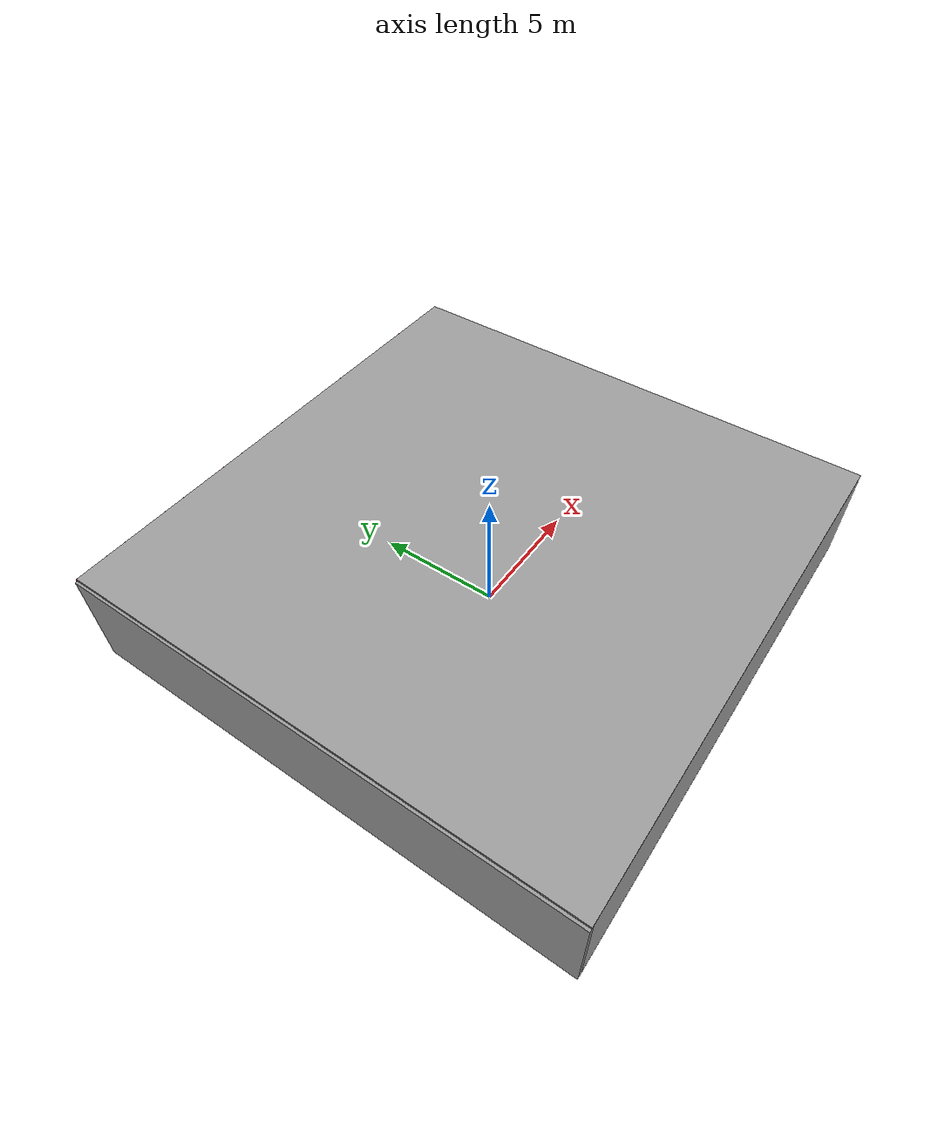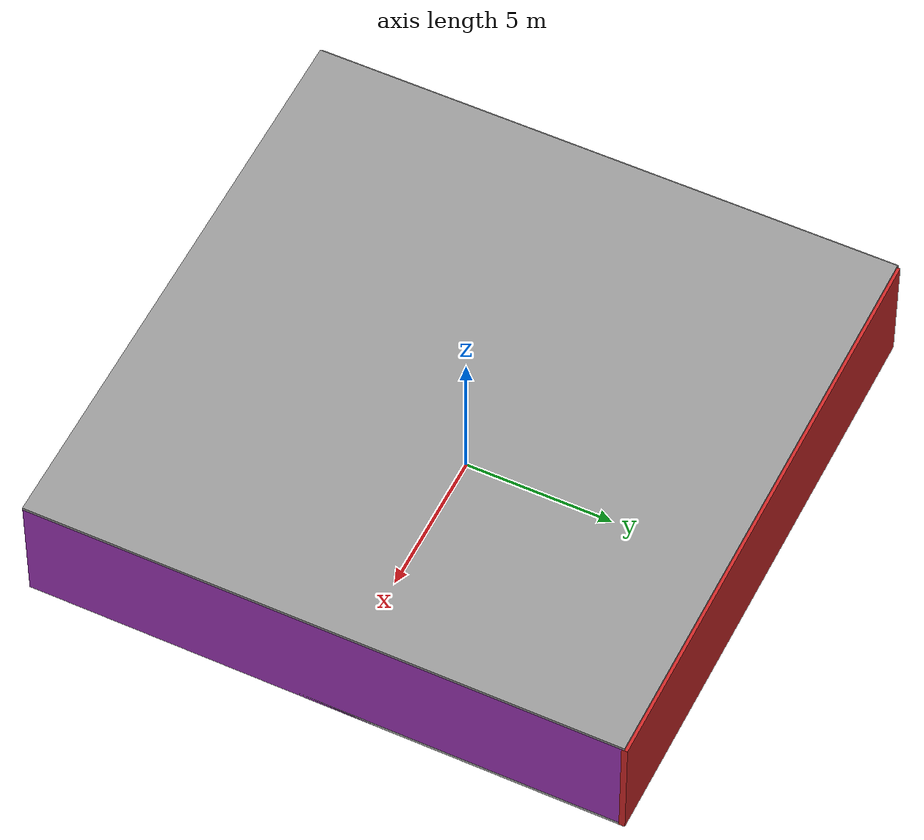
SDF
<sdf version="1.4">
 <world name="default">
  <physics type="ode">
   <max_step_size>0.001</max_step_size>
   <real_time_factor>1</real_time_factor>
   <real_time_update_rate>1000</real_time_update_rate>
   <gravity>0 0 -9.8</gravity>
  </physics>
  <scene><ambient>0.4 0.4 0.4 1</ambient><background>0.7 0.7 0.7 1</background><shadows>1</shadows></scene>
  <model name="Surrounding">
   <static>1</static>
   <link name="Ceiling">
    <collision name="Ceiling_Collision"><geometry><box><size>20 20 0.1</size></box></geometry></collision>
    <visual name="Ceiling_Visual">
     <geometry><box><size>20 20 0.1</size></box></geometry>
     <material>
      <script><uri>file://media/materials/scripts/gazebo.material</uri><name>Gazebo/Grey</name></script>
     </material>
    </visual>
    <pose>0 0 4.05 0 0 0</pose>
   </link>
   <link name="Wall_South">
    <collision name="Wall_South_Collision">
     <geometry><box><size>20 0 4</size></box></geometry>
     <pose>0 0 2 0 -0 0</pose>
    </collision>
    <visual name="Wall_South_Visual">
     <pose>0 0 2 0 -0 0</pose>
     <geometry><box><size>20 0 4</size></box></geometry>
     <material>
      <script><uri>file://media/materials/scripts/gazebo.material</uri><name>Gazebo/PioneerBody</name></script>
     </material>
    </visual>
    <velocity_decay><linear>0</linear><angular>0</angular></velocity_decay>
    <pose>0 -10 0 0 -0 0</pose>
   </link>
   <link name="Wall_East">
    <collision name="Wall_21_Collision">
     <geometry><box><size>20 0 4</size></box></geometry>
     <pose>0 0 2 0 -0 0</pose>
    </collision>
    <visual name="Wall_21_Visual">
     <pose>0 0 2 0 -0 0</pose>
     <geometry><box><size>20 0 4</size></box></geometry>
     <material>
      <script><uri>file://media/materials/scripts/gazebo.material</uri><name>Gazebo/PurpleGlow</name></script>
     </material>
    </visual>
    <velocity_decay><linear>0</linear><angular>0</angular></velocity_decay>
    <pose>10 0 0 0 -0 1.5708</pose>
   </link>
   <link name="Wall_North">
    <collision name="Wall_22_Collision">
     <geometry><box><size>20 0.2 4</size></box></geometry>
     <pose>0 0 2 0 -0 0</pose>
    </collision>
    <visual name="Wall_22_Visual">
     <pose>0 0 2 0 -0 0</pose>
     <geometry><box><size>20 0.2 4</size></box></geometry>
     <material>
      <script><uri>file://media/materials/scripts/gazebo.material</uri><name>Gazebo/Red</name></script>
     </material>
    </visual>
    <velocity_decay><linear>0</linear><angular>0</angular></velocity_decay>
    <pose>0 10 0 0 -0 0</pose>
   </link>
   <link name="Wall_West">
    <collision name="Wall_23_Collision">
     <geometry><box><size>20 0.2 4</size></box></geometry>
     <pose>0 0 2 0 -0 0</pose>
    </collision>
    <visual name="Wall_23_Visual">
     <pose>0 0 2 0 -0 0</pose>
     <geometry><box><size>20 0.2 4</size></box></geometry>
     <material>
      <script><uri>file://media/materials/scripts/gazebo.material</uri><name>Gazebo/Grey</name></script>
     </material>
    </visual>
    <velocity_decay><linear>0</linear><angular>0</angular></velocity_decay>
    <pose>-10 0 0 0 0 -1.5708</pose>
   </link>
   <link name="Ground_link">
    <collision name="collision">
     <pose>0 0 .05 0 -0 0</pose>
     <geometry><box><size>20 20 0.1</size></box></geometry>
    </collision>
    <visual name="visual">
     <pose>0 0 .05 0 -0 0</pose>
     <geometry><box><size>20 20 0.1</size></box></geometry>
     <material>
      <script><uri>file://media/materials/scripts/gazebo.material</uri><name>Gazebo/LightOn</name></script>
     </material>
    </visual>
   </link>
   <static>1</static>
  </model>
  <spherical_coordinates>
   <surface_model>EARTH_WGS84</surface_model>
   <latitude_deg>0</latitude_deg>
   <longitude_deg>0</longitude_deg>
   <elevation>0</elevation>
   <heading_deg>0</heading_deg>
  </spherical_coordinates>
  <light name="lightball_0" type="diffuse">
   <diffuse>0.8 0.8 0.8 1</diffuse>
   <specular>0.2 0.2 0.2 1</specular>
   <attenuation>
    <range>100</range>
    <constant>0.7</constant>
    <linear>0.01</linear>
    <quadratic>0.001</quadratic>
   </attenuation>
   <direction>-0.5 0.1 -0.9</direction>
   <pose>-1.09850128261 4.23059039691 1.70823492837 0 0 0</pose>
  </light>
  <light name="lightball_1" type="diffuse">
   <diffuse>0.8 0.8 0.8 1</diffuse>
   <specular>0.2 0.2 0.2 1</specular>
   <attenuation>
    <range>100</range>
    <constant>0.7</constant>
    <linear>0.01</linear>
    <quadratic>0.001</quadratic>
   </attenuation>
   <direction>-0.5 0.1 -0.9</direction>
   <pose>3.67840775792 3.63476996705 1.86008128026 0 0 0</pose>
  </light>
  <include>
   <uri>model://robocup_3Dsim_goal</uri>
   <pose>-7.34842048532 6.72848368077 0 0 0 0.178434358273</pose>
  </include>
  <include><uri>model://cabinet</uri><pose>-4.83233532024 -1.47540835998 0 0 0 1.59435239771</pose></include>
  <include>
   <uri>model://robocup_3Dsim_goal</uri>
   <pose>-5.68056238024 3.92187131179 0 0 0 0.0568249304401</pose>
  </include>
  <include>
   <uri>model://robocup_3Dsim_goal</uri>
   <pose>0.62270235823 -7.19054657349 0 0 0 1.4161109841</pose>
  </include>
  <include>
   <uri>model://robocup_3Dsim_goal</uri>
   <pose>1.91821050491 -5.65263570268 0 0 0 2.5629549778</pose>
  </include>
  <include><uri>model://cabinet</uri><pose>7.96404594759 -0.728511559887 0 0 0 0.0457571361077</pose></include>
  <include>
   <uri>model://robocup_3Dsim_goal</uri>
   <pose>8.57843241804 2.59389360098 0 0 0 0.458530488875</pose>
  </include>
 </world>
</sdf>

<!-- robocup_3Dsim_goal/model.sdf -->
<sdf version="1.5">
  <model name="robocup_3d_goal">
    <static>true</static>
    <link name="left_post">
      <pose>0 1.05 0.45 0 0 0</pose>
      <collision name="collision">
        <geometry>
          <cylinder>
            <radius>0.05</radius>
            <length>0.9</length>
          </cylinder>
        </geometry>
      </collision>
      <visual name="visual">
        <geometry>
          <cylinder>
            <radius>0.05</radius>
            <length>0.9</length>
          </cylinder>
        </geometry>
        <material>
          <script>
            <uri>file://media/materials/scripts/gazebo.material</uri>
            <name>Gazebo/ZincYellow</name>
          </script>
        </material>
      </visual>
    </link>
    <link name="left_support_horiz_lower">
      <pose>0.30 1.05 0.01 0 0 0</pose>
      <collision name="collision">
        <geometry>
          <box>
            <size>0.50 0.02 0.02</size>
          </box>
        </geometry>
      </collision>
      <visual name="visual">
        <geometry>
          <box>
            <size>0.50 0.02 0.02</size>
          </box>
        </geometry>
        <material>
          <script>
            <uri>file://media/materials/scripts/gazebo.material</uri>
            <name>Gazebo/White</name>
          </script>
        </material>
      </visual>
    </link>
    <link name="left_support_horiz_upper">
      <pose>0.30 1.05 0.79 0 0 0</pose>
      <collision name="collision">
        <geometry>
          <box>
            <size>0.50 0.02 0.02</size>
          </box>
        </geometry>
      </collision>
      <visual name="visual">
        <geometry>
          <box>
            <size>0.50 0.02 0.02</size>
          </box>
        </geometry>
        <material>
          <script>
            <uri>file://media/materials/scripts/gazebo.material</uri>
            <name>Gazebo/White</name>
          </script>
        </material>
      </visual>
    </link>
    <link name="left_support_vertical">
      <pose>0.56 1.05 0.4 0 1.5708 0</pose>
      <collision name="collision">
        <geometry>
          <box>
            <size>0.80 0.02 0.02</size>
          </box>
        </geometry>
      </collision>
      <visual name="visual">
        <geometry>
          <box>
            <size>0.80 0.02 0.02</size>
          </box>
        </geometry>
        <material>
          <script>
            <uri>file://media/materials/scripts/gazebo.material</uri>
            <name>Gazebo/White</name>
          </script>
        </material>
      </visual>
    </link>
    <link name="right_support_horiz_lower">
      <pose>0.30 -1.05 0.01 0 0 0</pose>
      <collision name="collision">
        <geometry>
          <box>
            <size>0.50 0.02 0.02</size>
          </box>
        </geometry>
      </collision>
      <visual name="visual">
        <geometry>
          <box>
            <size>0.50 0.02 0.02</size>
          </box>
        </geometry>
        <material>
          <script>
            <uri>file://media/materials/scripts/gazebo.material</uri>
            <name>Gazebo/White</name>
          </script>
        </material>
      </visual>
    </link>
    <link name="right_support_horiz_upper">
      <pose>0.30 -1.05 0.79 0 0 0</pose>
      <collision name="collision">
        <geometry>
          <box>
            <size>0.50 0.02 0.02</size>
          </box>
        </geometry>
      </collision>
      <visual name="visual">
        <geometry>
          <box>
            <size>0.50 0.02 0.02</size>
          </box>
        </geometry>
        <material>
          <script>
            <uri>file://media/materials/scripts/gazebo.material</uri>
            <name>Gazebo/White</name>
          </script>
        </material>
      </visual>
    </link>
    <link name="right_support_vertical">
      <pose>0.56 -1.05 0.4 0 1.5708 0</pose>
      <collision name="collision">
        <geometry>
          <box>
            <size>0.80 0.02 0.02</size>
          </box>
        </geometry>
      </collision>
      <visual name="visual">
        <geometry>
          <box>
            <size>0.80 0.02 0.02</size>
          </box>
        </geometry>
        <material>
          <script>
            <uri>file://media/materials/scripts/gazebo.material</uri>
            <name>Gazebo/White</name>
          </script>
        </material>
      </visual>
    </link>
    <link name="center_support_horiz_lower">
      <pose>0.56 0 0.01 0 1.5708 0</pose>
      <collision name="collision">
        <geometry>
          <box>
            <size>0.02 2.08 0.02</size>
          </box>
        </geometry>
      </collision>
      <visual name="visual">
        <geometry>
          <box>
            <size>0.02 2.08 0.02</size>
          </box>
        </geometry>
        <material>
          <script>
            <uri>file://media/materials/scripts/gazebo.material</uri>
            <name>Gazebo/White</name>
          </script>
        </material>
      </visual>
    </link>
    <link name="center_support_horiz_upper">
      <pose>0.56 0 0.79 0 1.5708 0</pose>
      <collision name="collision">
        <geometry>
          <box>
            <size>0.02 2.08 0.02</size>
          </box>
        </geometry>
      </collision>
      <visual name="visual">
        <geometry>
          <box>
            <size>0.02 2.08 0.02</size>
          </box>
        </geometry>
        <material>
          <script>
            <uri>file://media/materials/scripts/gazebo.material</uri>
            <name>Gazebo/White</name>
          </script>
        </material>
      </visual>
    </link>
    <link name="right_post">
      <pose>0 -1.05 0.45 0 0 0</pose>
      <collision name="collision">
        <geometry>
          <cylinder>
            <radius>0.05</radius>
            <length>0.9</length>
          </cylinder>
        </geometry>
      </collision>
      <visual name="visual">
        <geometry>
          <cylinder>
            <radius>0.05</radius>
            <length>0.9</length>
          </cylinder>
        </geometry>
        <material>
          <script>
            <uri>file://media/materials/scripts/gazebo.material</uri>
            <name>Gazebo/ZincYellow</name>
          </script>
        </material>
      </visual>
    </link>
    <link name="crossbar">
      <pose>0 0 0.85 1.57 1.57 0</pose>
      <collision name="collision">
        <geometry>
          <cylinder>
            <radius>0.05</radius>
            <length>2.0</length>
          </cylinder>
        </geometry>
      </collision>
      <visual name="visual">
        <geometry>
          <cylinder>
            <radius>0.05</radius>
            <length>2.0</length>
          </cylinder>
        </geometry>
        <material>
          <script>
            <uri>file://media/materials/scripts/gazebo.material</uri>
            <name>Gazebo/ZincYellow</name>
          </script>
        </material>
      </visual>
    </link>
    <link name="center_net">
      <pose>0.56 0 0.40 0 0 0</pose>
      <collision name="collision">
        <geometry>
          <box>
            <size>0.01 2.1 0.80</size>
          </box>
        </geometry>
      </collision>
      <visual name="visual">
        <geometry>
          <box>
            <size>0.01 2.1 0.80</size>
          </box>
        </geometry>
        <material>
          <script>
            <uri>model://../model_source/models/robocup09_spl_field/materials/scripts/</uri>
            <uri>model://../model_source/models/robocup09_spl_field/materials/textures/</uri>
            <name>RoboCup/Net</name>
          </script>
        </material>
      </visual>
    </link>
    <link name="left_net">
      <pose>0.30 1.05 0.40 0 0 0</pose>
      <collision name="collision">
        <geometry>
          <box>
            <size>0.50 0.01 0.76</size>
          </box>
        </geometry>
      </collision>
      <visual name="visual">
        <geometry>
          <box>
            <size>0.50 0.01 0.76</size>
          </box>
        </geometry>
        <material>
          <script>
            <uri>model://../model_source/models/robocup09_spl_field/materials/scripts/</uri>
            <uri>model://../model_source/models/robocup09_spl_field/materials/textures/</uri>
            <name>RoboCup/Net</name>
          </script>
        </material>
      </visual>
    </link>
    <link name="right_net">
      <pose>0.30 -1.05 0.40 0 0 0</pose>
      <collision name="collision">
        <geometry>
          <box>
            <size>0.50 0.01 0.76</size>
          </box>
        </geometry>
      </collision>
      <visual name="visual">
        <geometry>
          <box>
            <size>0.50 0.01 0.76</size>
          </box>
        </geometry>
        <material>
          <script>
            <uri>model://../model_source/models/robocup09_spl_field/materials/scripts/</uri>
            <uri>model://../model_source/models/robocup09_spl_field/materials/textures/</uri>
            <name>RoboCup/Net</name>
          </script>
        </material>
      </visual>
    </link>
  </model>
</sdf>

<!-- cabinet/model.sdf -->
<sdf version="1.5">
  <model name="cabinet">
    <static>true</static>
    <link name="cabinet_bottom_plate">
      <inertial>
        <pose>0 0 -1 0 0 0</pose>
        <inertia>
          <ixx>2.050000</ixx>
          <ixy>0</ixy>
          <ixz>0</ixz>
          <iyy>2.050000</iyy>
          <iyz>0</iyz>
          <izz>2.050000</izz>
        </inertia>
        <mass>25.000000</mass>
      </inertial>
      <collision name="cabinet_bottom_plate_geom">
        <pose>0 0 0.010000 0 0 0</pose>
        <geometry>
          <box>
            <size>0.450000 0.450000 0.020000</size>
          </box>
        </geometry>
      </collision>
      <visual name="cabinet_bottom_plate_geom_visual">
        <pose>0 0 0.010000 0 0 0</pose>
        <geometry>
          <box>
            <size>0.450000 0.450000 0.020000</size>
          </box>
        </geometry>
        <material>
          <script>
            <uri>model://media/materials/scripts/gazebo.material</uri>
            <name>Gazebo/Wood</name>
          </script>
        </material>
      </visual>
      <collision name="cabinet_bottom_plate_geom_cabinet_back_plate">
        <pose>0.235000 0 0.510000 0 0 0</pose>
        <geometry>
          <box>
            <size>0.020000 0.450000 1.020000</size>
          </box>
        </geometry>
      </collision>
      <visual name="cabinet_bottom_plate_geom_cabinet_back_plate_visual">
        <pose>0.235000 0 0.510000 0 0 0</pose>
        <geometry>
          <box>
            <size>0.020000 0.450000 1.020000</size>
          </box>
        </geometry>
        <material>
          <script>
            <uri>model://media/materials/scripts/gazebo.material</uri>
            <name>Gazebo/Wood</name>
          </script>
        </material>
      </visual>
      <collision name="cabinet_bottom_plate_geom_cabinet_left_plate">
        <pose>0 0.235000 0.510000 0 0 0</pose>
        <geometry>
          <box>
            <size>0.450000 0.020000 1.020000</size>
          </box>
        </geometry>
      </collision>
      <visual name="cabinet_bottom_plate_geom_cabinet_left_plate_visual">
        <pose>0 0.235000 0.510000 0 0 0</pose>
        <geometry>
          <box>
            <size>0.450000 0.020000 1.020000</size>
          </box>
        </geometry>
        <material>
          <script>
            <uri>model://media/materials/scripts/gazebo.material</uri>
            <name>Gazebo/Wood</name>
          </script>
        </material>
      </visual>
      <collision name="cabinet_bottom_plate_geom_cabinet_middle_plate">
        <pose>0 0 0.510000 0 0 0</pose>
        <geometry>
          <box>
            <size>0.450000 0.450000 0.020000</size>
          </box>
        </geometry>
      </collision>
      <visual name="cabinet_bottom_plate_geom_cabinet_middle_plate_visual">
        <pose>0 0 0.510000 0 0 0</pose>
        <geometry>
          <box>
            <size>0.450000 0.450000 0.020000</size>
          </box>
        </geometry>
        <material>
          <script>
            <uri>model://media/materials/scripts/gazebo.material</uri>
            <name>Gazebo/Wood</name>
          </script>
        </material>
      </visual>
      <collision name="cabinet_bottom_plate_geom_cabinet_right_plate">
        <pose>0 -0.235000 0.510000 0 0 0</pose>
        <geometry>
          <box>
            <size>0.450000 0.020000 1.020000</size>
          </box>
        </geometry>
      </collision>
      <visual name="cabinet_bottom_plate_geom_cabinet_right_plate_visual">
        <pose>0 -0.235000 0.510000 0 0 0</pose>
        <geometry>
          <box>
            <size>0.450000 0.020000 1.020000</size>
          </box>
        </geometry>
        <material>
          <script>
            <uri>model://media/materials/scripts/gazebo.material</uri>
            <name>Gazebo/Wood</name>
          </script>
        </material>
      </visual>
      <collision name="cabinet_bottom_plate_geom_cabinet_top_plate">
        <pose>0 0 1.010000 0 0 0</pose>
        <geometry>
          <box>
            <size>0.450000 0.450000 0.020000</size>
          </box>
        </geometry>
      </collision>
      <visual name="cabinet_bottom_plate_geom_cabinet_top_plate_visual">
        <pose>0 0 1.010000 0 0 0</pose>
        <geometry>
          <box>
            <size>0.450000 0.450000 0.020000</size>
          </box>
        </geometry>
        <material>
          <script>
            <uri>model://media/materials/scripts/gazebo.material</uri>
            <name>Gazebo/Wood</name>
          </script>
        </material>
      </visual>
    </link>
  </model>
</sdf>
